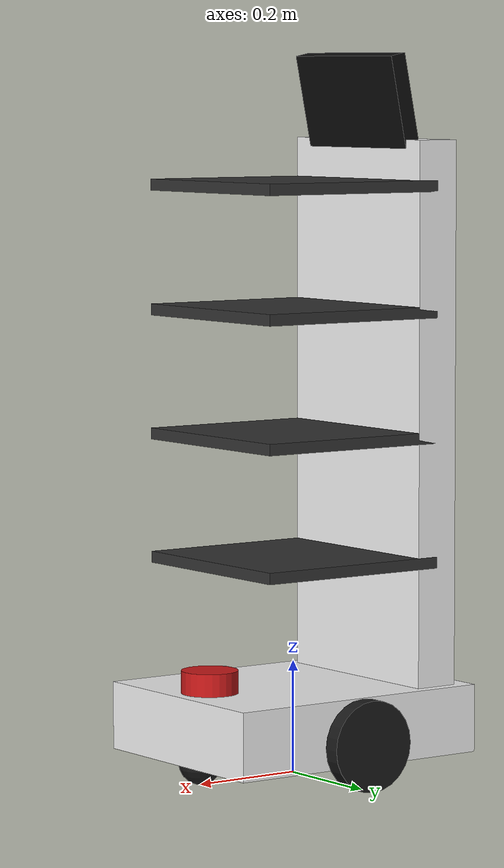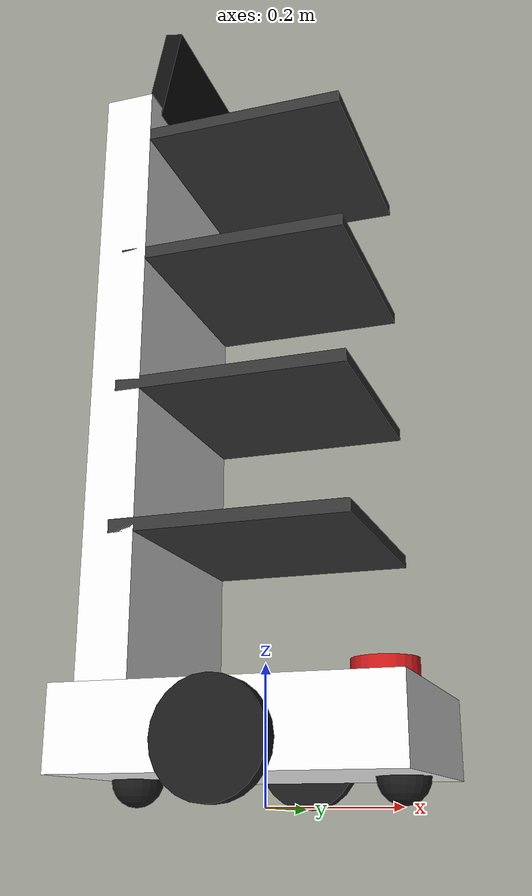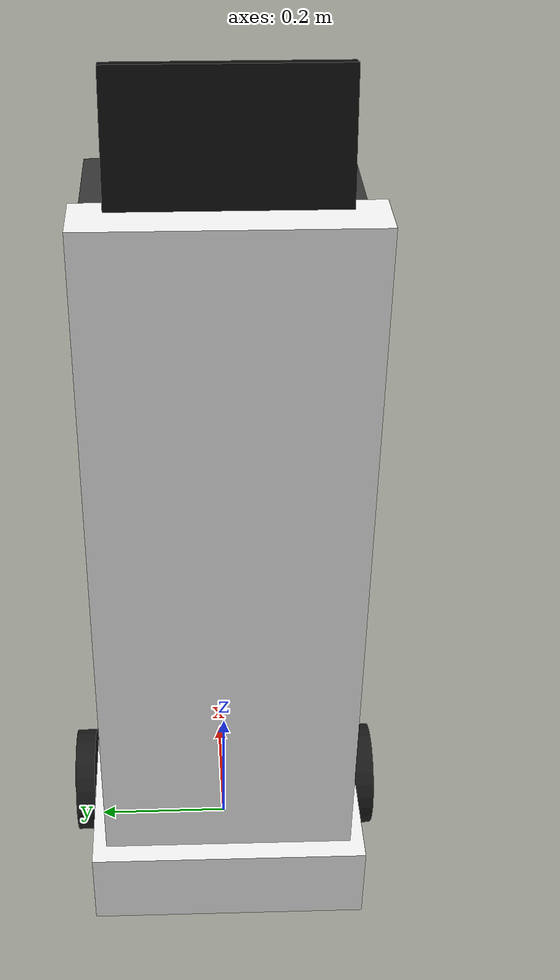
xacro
<?xml version="1.0" ?>
<robot name="waiter_robot" xmlns:xacro="http://www.ros.org/wiki/xacro">

  <!-- Base Footprint -->
  <link name="base_footprint"/>

  <joint name="base_joint" type="fixed">
    <parent link="base_footprint"/>
    <child link="base_link"/>
    <origin xyz="0 0 0.10" rpy="0 0 0"/>
  </joint>

  <!-- Base du Robot -->
  <link name="base_link">
    <visual>
      <origin xyz="0 0 0" rpy="0 0 0"/>
      <geometry><box size="0.50 0.40 0.12"/></geometry>
      <material name="white"><color rgba="0.95 0.95 0.95 1.0"/></material>
    </visual>
    <collision>
      <origin xyz="0 0 0" rpy="0 0 0"/>
      <geometry><box size="0.50 0.40 0.12"/></geometry>
    </collision>
    <inertial>
      <mass value="10.0"/>
      <origin xyz="0 0 0" rpy="0 0 0"/>
      <inertia ixx="0.15" ixy="0.0" ixz="0.0" iyy="0.23" iyz="0.0" izz="0.30"/>
    </inertial>
  </link>

  <!-- Roues -->
  <link name="wheel_left_link">
    <visual><geometry><cylinder length="0.03" radius="0.08"/></geometry><material name="black"><color rgba="0.1 0.1 0.1 1.0"/></material></visual>
    <collision><geometry><cylinder length="0.03" radius="0.08"/></geometry></collision>
    <inertial><mass value="0.5"/><inertia ixx="0.001" ixy="0" ixz="0" iyy="0.001" iyz="0" izz="0.001"/></inertial>
  </link>
  <joint name="wheel_left_joint" type="continuous">
    <parent link="base_link"/>
    <child link="wheel_left_link"/>
    <dynamics damping="0.2" friction="0.5"/>
    <origin xyz="0 0.22 -0.02" rpy="-1.5708 0 0"/>
    <axis xyz="0 0 1"/>
  </joint>

  <link name="wheel_right_link">
    <visual><geometry><cylinder length="0.03" radius="0.08"/></geometry><material name="black"/></visual>
    <collision><geometry><cylinder length="0.03" radius="0.08"/></geometry></collision>
    <inertial><mass value="0.5"/><inertia ixx="0.001" ixy="0" ixz="0" iyy="0.001" iyz="0" izz="0.001"/></inertial>
  </link>
  <joint name="wheel_right_joint" type="continuous">
    <parent link="base_link"/>
    <child link="wheel_right_link"/>
    <dynamics damping="0.2" friction="0.5"/>
    <origin xyz="0 -0.22 -0.02" rpy="-1.5708 0 0"/>
    <axis xyz="0 0 1"/>
  </joint>

  <!-- Roues folles (casters): sans elles le robot bascule et la base frotte le sol -> glissement + LiDAR incline -->
  <link name="caster_front_link">
    <collision><geometry><sphere radius="0.039"/></geometry></collision>
    <visual><geometry><sphere radius="0.039"/></geometry><material name="black"/></visual>
    <inertial><mass value="0.1"/><inertia ixx="0.0001" ixy="0" ixz="0" iyy="0.0001" iyz="0" izz="0.0001"/></inertial>
  </link>
  <joint name="caster_front_joint" type="fixed">
    <parent link="base_link"/><child link="caster_front_link"/><origin xyz="0.20 0 -0.06" rpy="0 0 0"/>
  </joint>
  <link name="caster_back_link">
    <collision><geometry><sphere radius="0.039"/></geometry></collision>
    <visual><geometry><sphere radius="0.039"/></geometry><material name="black"/></visual>
    <inertial><mass value="0.1"/><inertia ixx="0.0001" ixy="0" ixz="0" iyy="0.0001" iyz="0" izz="0.0001"/></inertial>
  </link>
  <joint name="caster_back_joint" type="fixed">
    <parent link="base_link"/><child link="caster_back_link"/><origin xyz="-0.20 0 -0.06" rpy="0 0 0"/>
  </joint>

  <gazebo reference="caster_front_link"><mu1>0.0</mu1><mu2>0.0</mu2></gazebo>
  <gazebo reference="caster_back_link"><mu1>0.0</mu1><mu2>0.0</mu2></gazebo>
  <gazebo reference="wheel_left_link">
    <mu1>1.0</mu1><mu2>1.0</mu2><kp>1000000.0</kp><kd>100.0</kd><minDepth>0.0</minDepth><maxVel>0.1</maxVel><fdir1>1 0 0</fdir1>
  </gazebo>
  <gazebo reference="wheel_right_link">
    <mu1>1.0</mu1><mu2>1.0</mu2><kp>1000000.0</kp><kd>100.0</kd><minDepth>0.0</minDepth><maxVel>0.1</maxVel><fdir1>1 0 0</fdir1>
  </gazebo>

  <!-- Support LiDAR -->
  <link name="base_scan">
    <visual>
      <geometry><cylinder length="0.04" radius="0.05"/></geometry>
      <material name="red"><color rgba="0.8 0.1 0.1 1.0"/></material>
    </visual>
    <collision>
      <geometry><cylinder length="0.04" radius="0.05"/></geometry>
    </collision>
  </link>
  <joint name="scan_joint" type="fixed">
    <parent link="base_link"/>
    <child link="base_scan"/>
    <origin xyz="0.18 0 0.08" rpy="0 0 0"/>
  </joint>

  <!-- Colonne Arrière + Étagères + Écran -->
  <link name="back_spine_link">
    <visual><origin xyz="0 0 0.48" rpy="0 0 0"/><geometry><box size="0.08 0.36 0.96"/></geometry><material name="white"/></visual>
    <collision><origin xyz="0 0 0.48" rpy="0 0 0"/><geometry><box size="0.08 0.36 0.96"/></geometry></collision>
  </link>
  <joint name="back_spine_joint" type="fixed">
    <parent link="base_link"/><child link="back_spine_link"/><origin xyz="-0.18 0 0.06" rpy="0 0 0"/>
  </joint>

  <link name="tray_1_link"><visual><geometry><box size="0.36 0.36 0.02"/></geometry><material name="dark"><color rgba="0.2 0.2 0.2 1.0"/></material></visual></link>
  <joint name="tray_1_joint" type="fixed"><parent link="back_spine_link"/><child link="tray_1_link"/><origin xyz="0.18 0 0.22" rpy="0 0 0"/></joint>

  <link name="tray_2_link"><visual><geometry><box size="0.36 0.36 0.02"/></geometry><material name="dark"/></visual></link>
  <joint name="tray_2_joint" type="fixed"><parent link="back_spine_link"/><child link="tray_2_link"/><origin xyz="0.18 0 0.44" rpy="0 0 0"/></joint>

  <link name="tray_3_link"><visual><geometry><box size="0.36 0.36 0.02"/></geometry><material name="dark"/></visual></link>
  <joint name="tray_3_joint" type="fixed"><parent link="back_spine_link"/><child link="tray_3_link"/><origin xyz="0.18 0 0.66" rpy="0 0 0"/></joint>

  <link name="tray_4_link"><visual><geometry><box size="0.36 0.36 0.02"/></geometry><material name="dark"/></visual></link>
  <joint name="tray_4_joint" type="fixed"><parent link="back_spine_link"/><child link="tray_4_link"/><origin xyz="0.18 0 0.88" rpy="0 0 0"/></joint>

  <link name="screen_link"><visual><geometry><box size="0.03 0.28 0.18"/></geometry><material name="black"><color rgba="0.05 0.05 0.05 1.0"/></material></visual></link>
  <joint name="screen_joint" type="fixed"><parent link="back_spine_link"/><child link="screen_link"/><origin xyz="0.04 0 1.02" rpy="0 0.20 0"/></joint>

  <!-- Plugin Gazebo Diff Drive -->
  <gazebo>
    <plugin name="diff_drive" filename="libgazebo_ros_diff_drive.so">
      <ros><namespace>/</namespace></ros>
      <update_rate>30</update_rate>
      <left_joint>wheel_left_joint</left_joint>
      <right_joint>wheel_right_joint</right_joint>
      <wheel_separation>0.44</wheel_separation>
      <wheel_diameter>0.16</wheel_diameter>
      <max_wheel_torque>20</max_wheel_torque>
      <max_wheel_acceleration>0.0</max_wheel_acceleration>
      <command_topic>cmd_vel</command_topic>
      <publish_odom>true</publish_odom>
      <publish_odom_tf>true</publish_odom_tf>
      <publish_wheel_tf>false</publish_wheel_tf>
      <odometry_topic>odom</odometry_topic>
      <odometry_frame>odom</odometry_frame>
      <robot_base_frame>base_footprint</robot_base_frame>
    </plugin>
  </gazebo>

  <gazebo reference="base_footprint">
    <sensor name="bumper" type="contact">
      <always_on>true</always_on>
      <update_rate>20</update_rate>
      <contact>
        <collision>base_footprint_fixed_joint_lump__base_link_collision</collision>
        <collision>base_footprint_fixed_joint_lump__back_spine_link_collision_1</collision>
        <collision>base_footprint_fixed_joint_lump__base_scan_collision_4</collision>
      </contact>
      <plugin name="bumper_plugin" filename="libgazebo_ros_bumper.so">
        <ros><remapping>bumper_states:=bumper</remapping></ros>
        <frame_name>base_footprint</frame_name>
      </plugin>
    </sensor>
  </gazebo>

  <!-- Plugin Gazebo LiDAR (Ray Sensor) -->
  <gazebo reference="base_scan">
    <sensor type="ray" name="lds_lfcd_sensor">
      <pose>0 0 0 0 0 0</pose>
      <visualize>true</visualize>
      <update_rate>10</update_rate>
      <ray>
        <scan>
          <horizontal>
            <!-- 290 deg: le secteur arriere (+/-35 deg) voit la colonne du robot -> exclu (auto-occlusion) -->
            <samples>290</samples>
            <resolution>1</resolution>
            <min_angle>-2.5307</min_angle>
            <max_angle>2.5307</max_angle>
          </horizontal>
        </scan>
        <range>
          <min>0.120</min>
          <max>12.0</max>
          <resolution>0.015</resolution>
        </range>
        <noise><type>gaussian</type><mean>0.0</mean><stddev>0.01</stddev></noise>
      </ray>
      <plugin name="gazebo_ros_lds_lfcd_controller" filename="libgazebo_ros_ray_sensor.so">
        <ros>
          <remapping>~/out:=scan</remapping>
        </ros>
        <output_type>sensor_msgs/LaserScan</output_type>
        <frame_name>base_scan</frame_name>
      </plugin>
    </sensor>
  </gazebo>

</robot>
